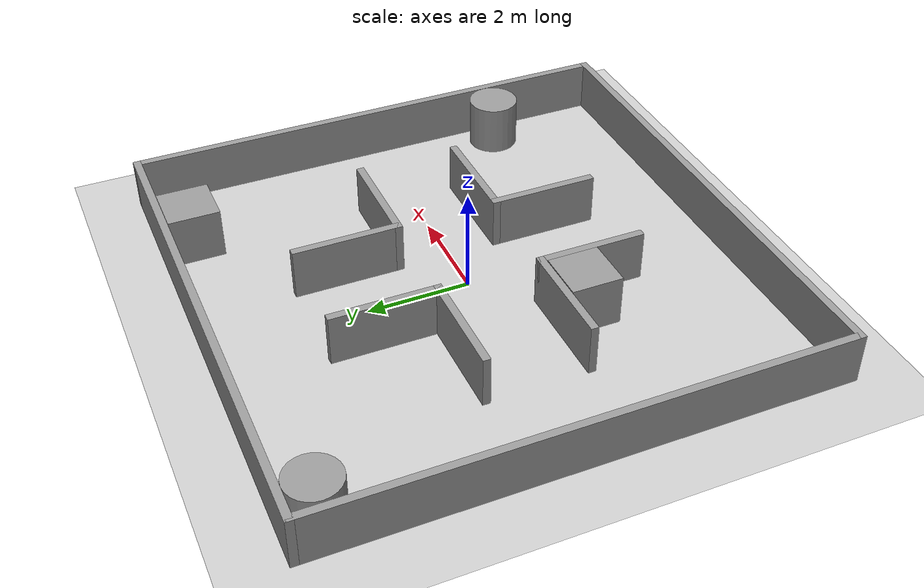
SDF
<sdf version="1.6">
 <world name="default">
  <light name="sun" type="directional">
   <pose>0 0 10 0 -0 0</pose>
   <diffuse>0.8 0.8 0.8 1</diffuse>
   <specular>0.1 0.1 0.1 1</specular>
   <attenuation>
    <range>1000</range>
    <constant>0.9</constant>
    <linear>0.01</linear>
    <quadratic>0.001</quadratic>
   </attenuation>
   <direction>-0.5 0.5 -1</direction>
  </light>
  <model name="ground_plane">
   <static>1</static>
   <link name="link">
    <collision name="collision">
     <geometry><plane><normal>0 0 1</normal><size>100 100</size></plane></geometry>
     <surface><friction><ode><mu>100</mu><mu2>50</mu2></ode></friction></surface>
    </collision>
    <visual name="visual">
     <cast_shadows>0</cast_shadows>
     <geometry><plane><normal>0 0 1</normal><size>100 100</size></plane></geometry>
     <material>
      <script><uri>file://media/materials/scripts/gazebo.material</uri><name>Gazebo/Grey</name></script>
     </material>
    </visual>
   </link>
  </model>
  <gravity>0 0 -9.8</gravity>
  <magnetic_field>6e-06 2.3e-05 -4.2e-05</magnetic_field>
  <atmosphere type="adiabatic"/>
  <physics name="default_physics" default="0" type="ode">
   <max_step_size>0.001</max_step_size>
   <real_time_factor>1</real_time_factor>
   <real_time_update_rate>1000</real_time_update_rate>
  </physics>
  <scene><ambient>0.4 0.4 0.4 1</ambient><background>0.7 0.7 0.7 1</background><shadows>1</shadows></scene>
  <spherical_coordinates>
   <surface_model>EARTH_WGS84</surface_model>
   <latitude_deg>0</latitude_deg>
   <longitude_deg>0</longitude_deg>
   <elevation>0</elevation>
   <heading_deg>0</heading_deg>
  </spherical_coordinates>
  <model name="world_5">
   <link name="Wall_10">
    <collision name="Wall_10_Collision">
     <geometry><box><size>2.15 0.15 1</size></box></geometry>
     <pose>0 0 0.5 0 -0 0</pose>
    </collision>
    <visual name="Wall_10_Visual">
     <pose>0 0 0.5 0 -0 0</pose>
     <geometry><box><size>2.15 0.15 1</size></box></geometry>
     <material>
      <script><uri>file://media/materials/scripts/gazebo.material</uri><name>Gazebo/Grey</name></script>
      <ambient>1 1 1 1</ambient>
     </material>
    </visual>
    <pose>-2 -1 0 0 -0 0</pose>
   </link>
   <link name="Wall_11">
    <collision name="Wall_11_Collision">
     <geometry><box><size>2.15 0.15 1</size></box></geometry>
     <pose>0 0 0.5 0 -0 0</pose>
    </collision>
    <visual name="Wall_11_Visual">
     <pose>0 0 0.5 0 -0 0</pose>
     <geometry><box><size>2.15 0.15 1</size></box></geometry>
     <material>
      <script><uri>file://media/materials/scripts/gazebo.material</uri><name>Gazebo/Grey</name></script>
      <ambient>1 1 1 1</ambient>
     </material>
    </visual>
    <pose>-1 -2 0 0 0 -1.5708</pose>
   </link>
   <link name="Wall_15">
    <collision name="Wall_15_Collision">
     <geometry><box><size>2.15 0.15 1</size></box></geometry>
     <pose>0 0 0.5 0 -0 0</pose>
    </collision>
    <visual name="Wall_15_Visual">
     <pose>0 0 0.5 0 -0 0</pose>
     <geometry><box><size>2.15 0.15 1</size></box></geometry>
     <material>
      <script><uri>file://media/materials/scripts/gazebo.material</uri><name>Gazebo/Grey</name></script>
      <ambient>1 1 1 1</ambient>
     </material>
    </visual>
    <pose>2 -1 0 0 -0 3.14159</pose>
   </link>
   <link name="Wall_16">
    <collision name="Wall_16_Collision">
     <geometry><box><size>2.15 0.15 1</size></box></geometry>
     <pose>0 0 0.5 0 -0 0</pose>
    </collision>
    <visual name="Wall_16_Visual">
     <pose>0 0 0.5 0 -0 0</pose>
     <geometry><box><size>2.15 0.15 1</size></box></geometry>
     <material>
      <script><uri>file://media/materials/scripts/gazebo.material</uri><name>Gazebo/Grey</name></script>
      <ambient>1 1 1 1</ambient>
     </material>
    </visual>
    <pose>1 -2 0 0 0 -1.5708</pose>
   </link>
   <link name="Wall_18">
    <collision name="Wall_18_Collision">
     <geometry><box><size>2.15 0.15 1</size></box></geometry>
     <pose>0 0 0.5 0 -0 0</pose>
    </collision>
    <visual name="Wall_18_Visual">
     <pose>0 0 0.5 0 -0 0</pose>
     <geometry><box><size>2.15 0.15 1</size></box></geometry>
     <material>
      <script><uri>file://media/materials/scripts/gazebo.material</uri><name>Gazebo/Grey</name></script>
      <ambient>1 1 1 1</ambient>
     </material>
    </visual>
    <pose>-2 1 0 0 -0 0</pose>
   </link>
   <link name="Wall_19">
    <collision name="Wall_19_Collision">
     <geometry><box><size>2.15 0.15 1</size></box></geometry>
     <pose>0 0 0.5 0 -0 0</pose>
    </collision>
    <visual name="Wall_19_Visual">
     <pose>0 0 0.5 0 -0 0</pose>
     <geometry><box><size>2.15 0.15 1</size></box></geometry>
     <material>
      <script><uri>file://media/materials/scripts/gazebo.material</uri><name>Gazebo/Grey</name></script>
      <ambient>1 1 1 1</ambient>
     </material>
    </visual>
    <pose>-1 2 0 0 -0 1.5708</pose>
   </link>
   <link name="Wall_22">
    <collision name="Wall_22_Collision">
     <geometry><box><size>2.15 0.15 1</size></box></geometry>
     <pose>0 0 0.5 0 -0 0</pose>
    </collision>
    <visual name="Wall_22_Visual">
     <pose>0 0 0.5 0 -0 0</pose>
     <geometry><box><size>2.15 0.15 1</size></box></geometry>
     <material>
      <script><uri>file://media/materials/scripts/gazebo.material</uri><name>Gazebo/Grey</name></script>
      <ambient>1 1 1 1</ambient>
     </material>
    </visual>
    <pose>2 1 0 0 -0 3.14159</pose>
   </link>
   <link name="Wall_23">
    <collision name="Wall_23_Collision">
     <geometry><box><size>2.15 0.15 1</size></box></geometry>
     <pose>0 0 0.5 0 -0 0</pose>
    </collision>
    <visual name="Wall_23_Visual">
     <pose>0 0 0.5 0 -0 0</pose>
     <geometry><box><size>2.15 0.15 1</size></box></geometry>
     <material>
      <script><uri>file://media/materials/scripts/gazebo.material</uri><name>Gazebo/Grey</name></script>
      <ambient>1 1 1 1</ambient>
     </material>
    </visual>
    <pose>1 2 0 0 -0 1.5708</pose>
   </link>
   <link name="Wall_5">
    <collision name="Wall_5_Collision">
     <geometry><box><size>10.15 0.15 1</size></box></geometry>
     <pose>0 0 0.5 0 -0 0</pose>
    </collision>
    <visual name="Wall_5_Visual">
     <pose>0 0 0.5 0 -0 0</pose>
     <geometry><box><size>10.15 0.15 1</size></box></geometry>
     <material>
      <script><uri>file://media/materials/scripts/gazebo.material</uri><name>Gazebo/Grey</name></script>
      <ambient>1 1 1 1</ambient>
     </material>
    </visual>
    <pose>0 -5 0 0 -0 0</pose>
   </link>
   <link name="Wall_6">
    <collision name="Wall_6_Collision">
     <geometry><box><size>10.15 0.15 1</size></box></geometry>
     <pose>0 0 0.5 0 -0 0</pose>
    </collision>
    <visual name="Wall_6_Visual">
     <pose>0 0 0.5 0 -0 0</pose>
     <geometry><box><size>10.15 0.15 1</size></box></geometry>
     <material>
      <script><uri>file://media/materials/scripts/gazebo.material</uri><name>Gazebo/Grey</name></script>
      <ambient>1 1 1 1</ambient>
     </material>
    </visual>
    <pose>5 0 0 0 -0 1.5708</pose>
   </link>
   <link name="Wall_7">
    <collision name="Wall_7_Collision">
     <geometry><box><size>10.15 0.15 1</size></box></geometry>
     <pose>0 0 0.5 0 -0 0</pose>
    </collision>
    <visual name="Wall_7_Visual">
     <pose>0 0 0.5 0 -0 0</pose>
     <geometry><box><size>10.15 0.15 1</size></box></geometry>
     <material>
      <script><uri>file://media/materials/scripts/gazebo.material</uri><name>Gazebo/Grey</name></script>
      <ambient>1 1 1 1</ambient>
     </material>
    </visual>
    <pose>0 5 0 0 -0 3.14159</pose>
   </link>
   <link name="Wall_8">
    <collision name="Wall_8_Collision">
     <geometry><box><size>10.15 0.15 1</size></box></geometry>
     <pose>0 0 0.5 0 -0 0</pose>
    </collision>
    <visual name="Wall_8_Visual">
     <pose>0 0 0.5 0 -0 0</pose>
     <geometry><box><size>10.15 0.15 1</size></box></geometry>
     <material>
      <script><uri>file://media/materials/scripts/gazebo.material</uri><name>Gazebo/Grey</name></script>
      <ambient>1 1 1 1</ambient>
     </material>
    </visual>
    <pose>-5 0 0 0 0 -1.5708</pose>
   </link>
   <static>1</static>
  </model>
  <model name="unit_cylinder_0">
   <pose>-4.38928 4.425 0.499992 -3e-06 -4e-06 -0</pose>
   <link name="link">
    <inertial>
     <mass>1</mass>
     <inertia><ixx>0.145833</ixx><ixy>0</ixy><ixz>0</ixz><iyy>0.145833</iyy><iyz>0</iyz><izz>0.125</izz></inertia>
    </inertial>
    <collision name="collision">
     <geometry><cylinder><radius>0.5</radius><length>1</length></cylinder></geometry>
    </collision>
    <visual name="visual">
     <geometry><cylinder><radius>0.5</radius><length>1</length></cylinder></geometry>
     <material>
      <script><name>Gazebo/Grey</name><uri>file://media/materials/scripts/gazebo.material</uri></script>
     </material>
    </visual>
   </link>
  </model>
  <model name="unit_box_0">
   <pose>-1.575 -1.59024 0.5 0 -0 0</pose>
   <link name="link">
    <inertial>
     <mass>1</mass>
     <inertia>
      <ixx>0.166667</ixx>
      <ixy>0</ixy>
      <ixz>0</ixz>
      <iyy>0.166667</iyy>
      <iyz>0</iyz>
      <izz>0.166667</izz>
     </inertia>
    </inertial>
    <collision name="collision"><geometry><box><size>1 1 1</size></box></geometry></collision>
    <visual name="visual">
     <geometry><box><size>1 1 1</size></box></geometry>
     <material>
      <script><name>Gazebo/Grey</name><uri>file://media/materials/scripts/gazebo.material</uri></script>
     </material>
    </visual>
   </link>
  </model>
  <model name="unit_cylinder_1">
   <pose>4.4219 -2.50307 0.499993 -3e-06 -4e-06 -0</pose>
   <link name="link">
    <inertial>
     <mass>1</mass>
     <inertia><ixx>0.145833</ixx><ixy>0</ixy><ixz>0</ixz><iyy>0.145833</iyy><iyz>0</iyz><izz>0.125</izz></inertia>
    </inertial>
    <collision name="collision">
     <geometry><cylinder><radius>0.5</radius><length>1</length></cylinder></geometry>
    </collision>
    <visual name="visual">
     <geometry><cylinder><radius>0.5</radius><length>1</length></cylinder></geometry>
     <material>
      <script><name>Gazebo/Grey</name><uri>file://media/materials/scripts/gazebo.material</uri></script>
     </material>
    </visual>
   </link>
  </model>
  <model name="unit_box_1">
   <pose>3.23641 4.41978 0.5 0 -0 0</pose>
   <link name="link">
    <inertial>
     <mass>1</mass>
     <inertia>
      <ixx>0.166667</ixx>
      <ixy>0</ixy>
      <ixz>0</ixz>
      <iyy>0.166667</iyy>
      <iyz>0</iyz>
      <izz>0.166667</izz>
     </inertia>
    </inertial>
    <collision name="collision"><geometry><box><size>1 1 1</size></box></geometry></collision>
    <visual name="visual">
     <geometry><box><size>1 1 1</size></box></geometry>
     <material>
      <script><name>Gazebo/Grey</name><uri>file://media/materials/scripts/gazebo.material</uri></script>
     </material>
    </visual>
   </link>
  </model>
 </world>
</sdf>
